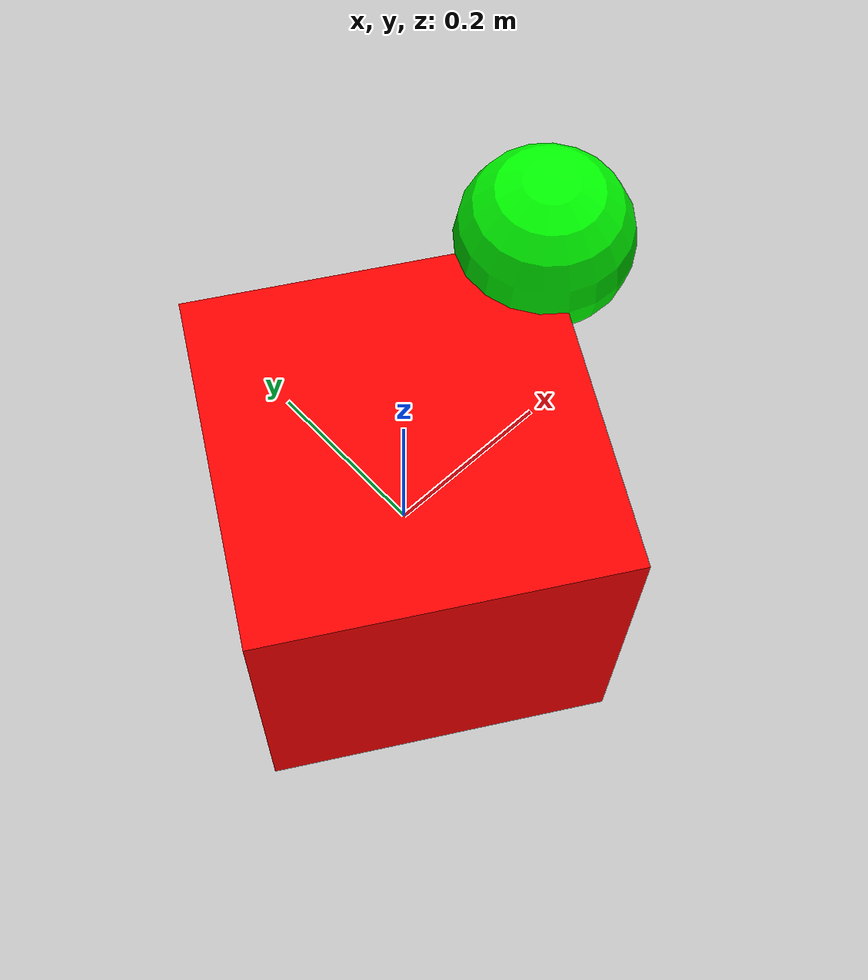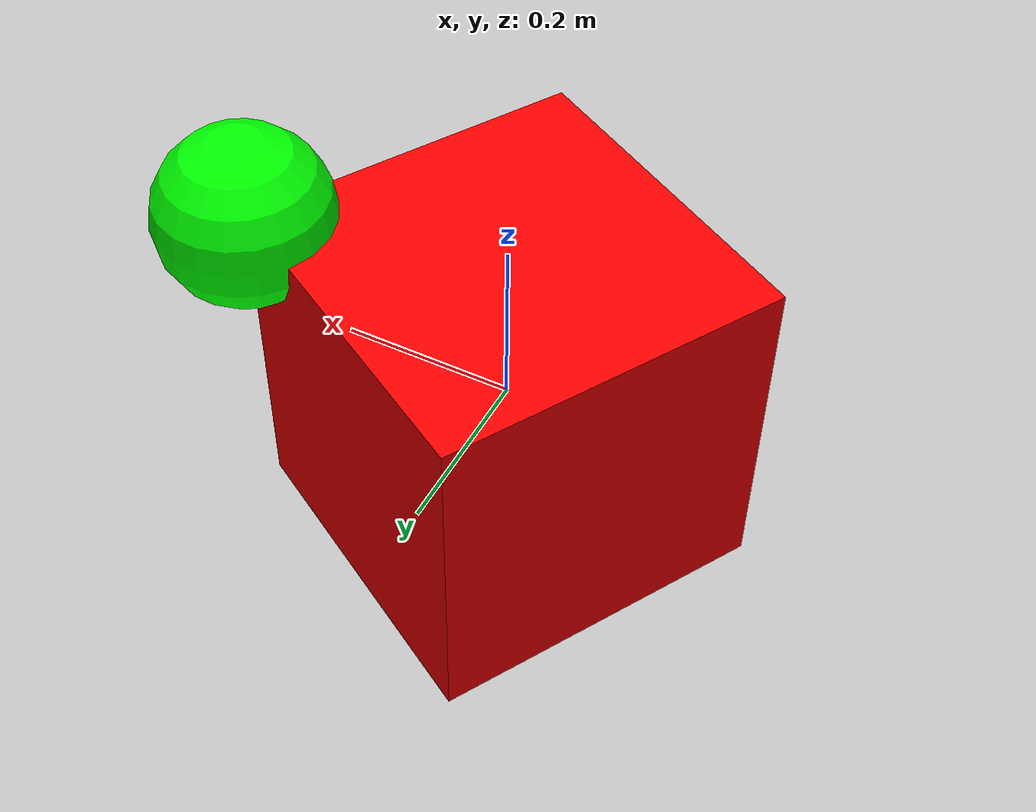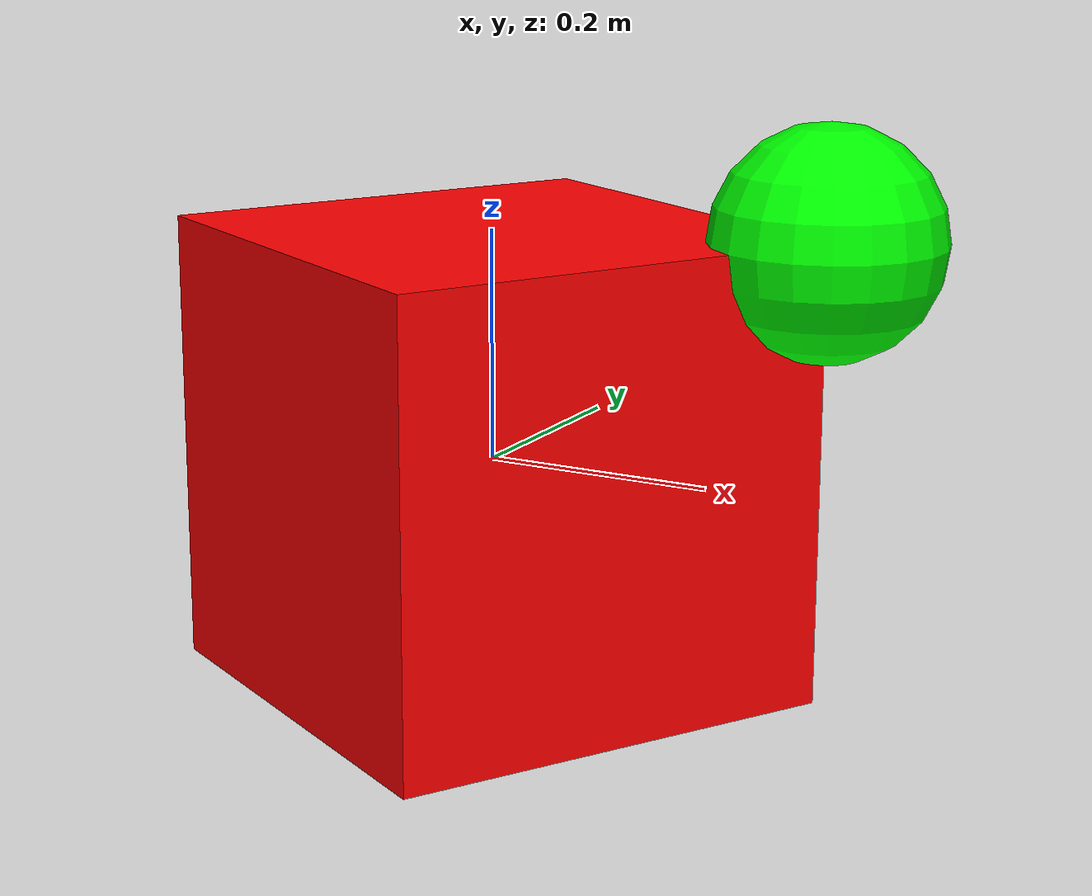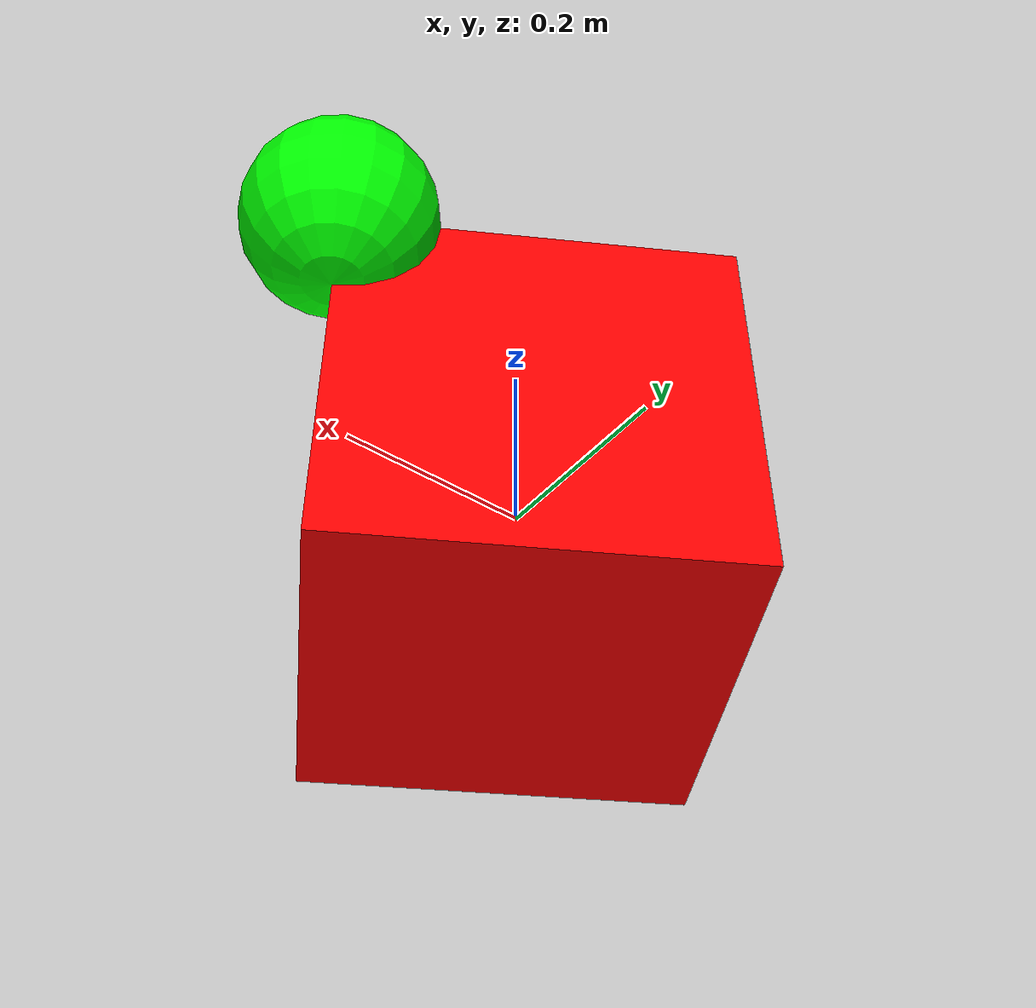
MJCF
<!-- Author: Jacob Meredith (jmer@udel.edu)-->
<?xml version="1.0" encoding="utf-8"?>
<mujoco>
  <option gravity="0 0 10"/>
  <worldbody>
    <light name="spotlight" pos="0 0 1"/>
    <body name ="box_and_sphere" euler="0 0 -30">
    	<joint name="swing" type="hinge" axis="1 -1 0" pos="-.2 -.2 -.2"/>
    	<geom name="red_box" type="box" size=".2 .2 .2" rgba="1 0 0 1"/>
    	<geom name="green_sphere" pos=".2 .2 .2" size=".1" rgba="0 1 0 1"/>
    </body>
  </worldbody>
</mujoco>
